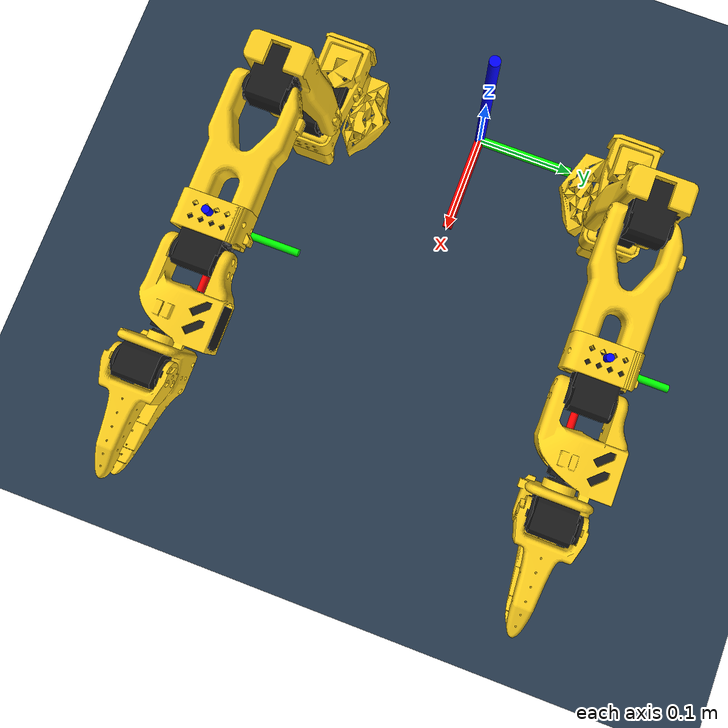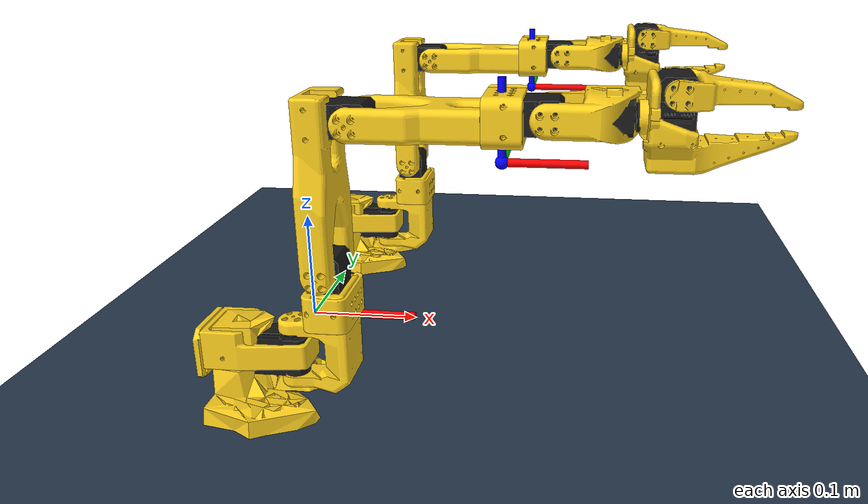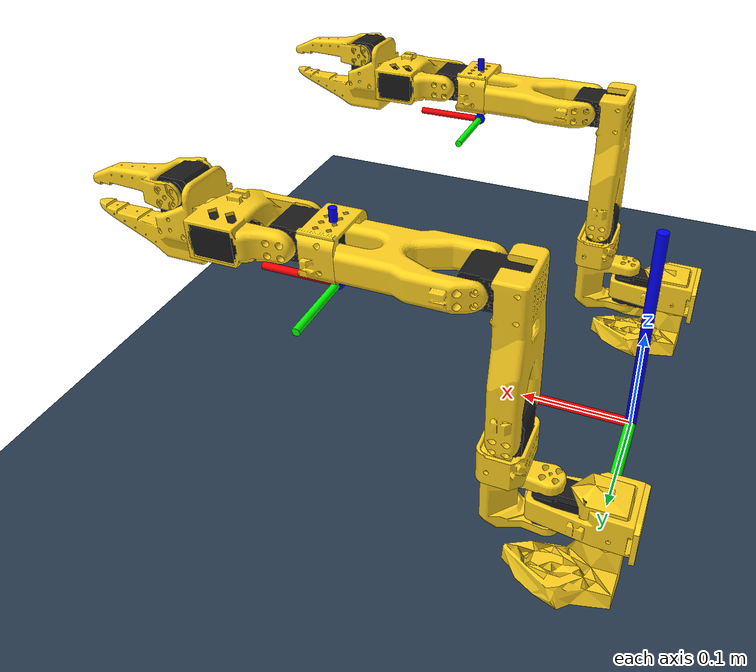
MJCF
<mujoco model="dual so101 teleop scene">
  <include file="dual_so101.xml"/>

  <statistic center="0.15 0 0.15" extent="0.6" meansize="0.05"/>

  <visual>
    <headlight diffuse="0.6 0.6 0.6" ambient="0.3 0.3 0.3" specular="0 0 0"/>
    <global azimuth="160" elevation="-20"/>
  </visual>

  <asset>
    <texture name="grid" type="2d" builtin="checker" rgb1=".2 .3 .4" rgb2=".1 0.15 0.2" width="512" height="512"
      mark="cross" markrgb=".8 .8 .8"/>
    <material name="grid" texture="grid" texrepeat="1 1" texuniform="true"/>
  </asset>

  <worldbody>
    <light pos="0 0 1.5" directional="true"/>
    <geom name="floor" size="0.5 0.5 0.01" type="plane" material="grid"/>

    <!-- Mocap target for XR left controller visualization -->
    <body name="left_target" pos="0.2 0.15 0.2" quat="1 0 0 0" mocap="true">
      <geom name="left_target_x_shaft" type="cylinder" size="0.003 0.03" pos="0.03 0 0" zaxis="1 0 0" rgba="1 0 0 1" contype="0" conaffinity="0" group="1"/>
      <geom name="left_target_y_shaft" type="cylinder" size="0.003 0.03" pos="0 0.03 0" zaxis="0 1 0" rgba="0 1 0 1" contype="0" conaffinity="0" group="1"/>
      <geom name="left_target_z_shaft" type="cylinder" size="0.003 0.03" pos="0 0 0.03" zaxis="0 0 1" rgba="0 0 1 1" contype="0" conaffinity="0" group="1"/>
      <site type="sphere" size="0.005" rgba="0 0 1 1" group="1"/>
    </body>

    <!-- Mocap target for XR right controller visualization -->
    <body name="right_target" pos="0.2 -0.15 0.2" quat="1 0 0 0" mocap="true">
      <geom name="right_target_x_shaft" type="cylinder" size="0.003 0.03" pos="0.03 0 0" zaxis="1 0 0" rgba="1 0 0 1" contype="0" conaffinity="0" group="1"/>
      <geom name="right_target_y_shaft" type="cylinder" size="0.003 0.03" pos="0 0.03 0" zaxis="0 1 0" rgba="0 1 0 1" contype="0" conaffinity="0" group="1"/>
      <geom name="right_target_z_shaft" type="cylinder" size="0.003 0.03" pos="0 0 0.03" zaxis="0 0 1" rgba="0 0 1 1" contype="0" conaffinity="0" group="1"/>
      <site type="sphere" size="0.005" rgba="0 0 1 1" group="1"/>
    </body>

    <!-- World frame axes -->
    <geom name="world_x_shaft" type="cylinder" size="0.005 0.05" pos="0.05 0 0.0" zaxis="1 0 0" rgba="1 0 0 1" contype="0" conaffinity="0" group="1"/>
    <geom name="world_y_shaft" type="cylinder" size="0.005 0.05" pos="0 0.05 0.0" zaxis="0 1 0" rgba="0 1 0 1" contype="0" conaffinity="0" group="1"/>
    <geom name="world_z_shaft" type="cylinder" size="0.005 0.1" pos="0 0 0.1" zaxis="0 0 1" rgba="0 0 1 1" contype="0" conaffinity="0" group="1"/>
  </worldbody>
</mujoco>

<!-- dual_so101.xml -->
<mujoco model="dual_so101">
  <compiler angle="radian" meshdir="assets" autolimits="true"/>

  <!-- Shared defaults (from single-arm model) -->
  <default>
    <default class="so101_new_calib">
      <joint damping="1" frictionloss="0.1" armature="0.005"/>
      <position kp="50"/>
      <default class="visual">
        <geom type="mesh" contype="0" conaffinity="0" group="2"/>
      </default>
      <default class="collision">
        <geom group="3"/>
      </default>
    </default>
  </default>

  <default>
    <default class="sts3215">
      <geom contype="0" conaffinity="0"/>
      <joint damping="0.60" frictionloss="0.052" armature="0.028"/>
      <position kp="998.22" kv="2.731" forcerange="-2.94 2.94"/>
    </default>
    <default class="backlash">
      <joint damping="0.01" frictionloss="0" armature="0.01" limited="true" range="-0.008726646259971648 0.008726646259971648"/>
    </default>
  </default>

  <worldbody>
    <!-- ==================== LEFT ARM ==================== -->

    <!-- Link base -->
    <body name="left_base" pos="0 0.15 0" quat="1 0 0 0" childclass="so101_new_calib">
      <inertial pos="0.0137179 -5.19711e-05 0.0334843" mass="0.147" fullinertia="0.000114686 0.000136117 0.000130364 -4.59787e-07 4.97151e-06 9.75275e-08"/>
      <!-- Part base_motor_holder_so101_v1 -->
      <geom type="mesh" class="visual" pos="-0.00636471 -9.94414e-05 -0.0024" quat="0.5 0.5 0.5 0.5" mesh="base_motor_holder_so101_v1" material="base_motor_holder_so101_v1_material"/>
      <!-- Part base_so101_v2 -->
      <geom type="mesh" class="visual" pos="-0.00636471 -8.97657e-09 -0.0024" quat="0.5 0.5 0.5 0.5" mesh="base_so101_v2" material="base_so101_v2_material"/>
      <!-- Part sts3215_03a_v1 -->
      <geom type="mesh" class="visual" pos="0.0263353 -8.97657e-09 0.0437" quat="1 -2.85511e-16 -9.64433e-17 6.12908e-16" mesh="sts3215_03a_v1" material="sts3215_03a_v1_material"/>
      <!-- Part waveshare_mounting_plate_so101_v2 -->
      <geom type="mesh" class="visual" pos="-0.0309827 -0.000199441 0.0474" quat="0.5 0.5 0.5 0.5" mesh="waveshare_mounting_plate_so101_v2" material="waveshare_mounting_plate_so101_v2_material"/>
      <!-- Frame baseframe -->
      <site group="3" name="left_baseframe" pos="8.67362e-19 9.55596e-18 3.46945e-18" quat="1 -8.17396e-19 3.78392e-17 2.22045e-16"/>
      <!-- Link shoulder -->
      <body name="left_shoulder" pos="0.0388353 -8.97657e-09 0.0624" quat="3.56167e-16 1.22818e-15 -1 -4.14635e-16">
        <!-- Joint from base to shoulder -->
        <joint axis="0 0 1" name="left_shoulder_pan" type="hinge" range="-1.9198621771937616 1.9198621771937634" class="sts3215"/>
        <inertial pos="-0.0307604 -1.66727e-05 -0.0252713" mass="0.100006" fullinertia="8.3759e-05 8.10403e-05 2.39783e-05 7.55525e-08 -1.16342e-06 1.54663e-07"/>
        <!-- Part sts3215_03a_v1_2 -->
        <geom type="mesh" class="visual" pos="-0.0303992 0.000422241 -0.0417" quat="0.5 0.5 0.5 -0.5" mesh="sts3215_03a_v1" material="sts3215_03a_v1_material"/>
        <geom type="mesh" class="collision" pos="-0.0303992 0.000422241 -0.0417" quat="0.5 0.5 0.5 -0.5" mesh="sts3215_03a_v1" material="sts3215_03a_v1_material"/>
        <!-- Part motor_holder_so101_base_v1 -->
        <geom type="mesh" class="visual" pos="-0.0675992 -0.000177759 0.0158499" quat="0.5 0.5 -0.5 0.5" mesh="motor_holder_so101_base_v1" material="motor_holder_so101_base_v1_material"/>
        <geom type="mesh" class="collision" pos="-0.0675992 -0.000177759 0.0158499" quat="0.5 0.5 -0.5 0.5" mesh="motor_holder_so101_base_v1" material="motor_holder_so101_base_v1_material"/>
        <!-- Part rotation_pitch_so101_v1 -->
        <geom type="mesh" class="visual" pos="0.0122008 2.22413e-05 0.0464" quat="0.707107 -0.707107 -0 8.3163e-34" mesh="rotation_pitch_so101_v1" material="rotation_pitch_so101_v1_material"/>
        <geom type="mesh" class="collision" pos="0.0122008 2.22413e-05 0.0464" quat="0.707107 -0.707107 -0 8.3163e-34" mesh="rotation_pitch_so101_v1" material="rotation_pitch_so101_v1_material"/>
        <!-- Link upper_arm -->
        <body name="left_upper_arm" pos="-0.0303992 -0.0182778 -0.0542" quat="0.5 -0.5 -0.5 -0.5">
          <!-- Joint from shoulder to upper_arm -->
          <joint axis="0 0 1" name="left_shoulder_lift" type="hinge" range="-1.7453292519943224 1.7453292519943366" class="sts3215"/>
          <inertial pos="-0.0898471 -0.00838224 0.0184089" mass="0.103" fullinertia="4.08002e-05 0.000147318 0.000142487 -1.97819e-05 -4.03016e-08 8.97326e-09"/>
          <!-- Part sts3215_03a_v1_3 -->
          <geom type="mesh" class="visual" pos="-0.11257 -0.0155 0.0187" quat="4.56308e-16 -0.707107 0.707107 -1.37383e-16" mesh="sts3215_03a_v1" material="sts3215_03a_v1_material"/>
          <geom type="mesh" class="collision" pos="-0.11257 -0.0155 0.0187" quat="4.56308e-16 -0.707107 0.707107 -1.37383e-16" mesh="sts3215_03a_v1" material="sts3215_03a_v1_material"/>
          <!-- Part upper_arm_so101_v1 -->
          <geom type="mesh" class="visual" pos="-0.065085 0.012 0.0182" quat="0 1 0 0" mesh="upper_arm_so101_v1" material="upper_arm_so101_v1_material"/>
          <geom type="mesh" class="collision" pos="-0.065085 0.012 0.0182" quat="0 1 0 0" mesh="upper_arm_so101_v1" material="upper_arm_so101_v1_material"/>
          <!-- Link lower_arm -->
          <body name="left_lower_arm" pos="-0.11257 -0.028 1.73763e-16" quat="0.707107 -5.98613e-17 -2.58051e-17 0.707107">
            <!-- Joint from upper_arm to lower_arm -->
            <!-- Note: 5-degree calibration offset applied to joint range -->
            <joint axis="0 0 1" name="left_elbow_flex" type="hinge" range="-1.69 1.69" class="sts3215"/>
            <inertial pos="-0.0980701 0.00324376 0.0182831" mass="0.104" fullinertia="2.87438e-05 0.000159844 0.00014529 7.41152e-06 1.26409e-06 -4.90188e-08"/>
            <!-- Part under_arm_so101_v1 -->
            <geom type="mesh" class="visual" pos="-0.0648499 -0.032 0.0182" quat="0 1 0 0" mesh="under_arm_so101_v1" material="under_arm_so101_v1_material"/>
            <geom type="mesh" class="collision" pos="-0.0648499 -0.032 0.0182" quat="0 1 0 0" mesh="under_arm_so101_v1" material="under_arm_so101_v1_material"/>
            <!-- Part motor_holder_so101_wrist_v1 -->
            <geom type="mesh" class="visual" pos="-0.0648499 -0.032 0.018" quat="3.92687e-16 -1 -1.9186e-15 -6.38378e-16" mesh="motor_holder_so101_wrist_v1" material="motor_holder_so101_wrist_v1_material"/>
            <geom type="mesh" class="collision" pos="-0.0648499 -0.032 0.018" quat="3.92687e-16 -1 -1.9186e-15 -6.38378e-16" mesh="motor_holder_so101_wrist_v1" material="motor_holder_so101_wrist_v1_material"/>
            <!-- Part sts3215_03a_v1_4 -->
            <geom type="mesh" class="visual" pos="-0.1224 0.0052 0.0187" quat="7.21645e-16 1.56949e-15 1 -3.33067e-16" mesh="sts3215_03a_v1" material="sts3215_03a_v1_material"/>
            <geom type="mesh" class="collision" pos="-0.1224 0.0052 0.0187" quat="7.21645e-16 1.56949e-15 1 -3.33067e-16" mesh="sts3215_03a_v1" material="sts3215_03a_v1_material"/>
            <!-- Link wrist -->
            <body name="left_wrist" pos="-0.1349 0.0052 3.62355e-17" quat="0.707107 9.58722e-16 -7.51313e-16 -0.707107">
              <!-- Joint from lower_arm to wrist -->
              <joint axis="0 0 1" name="left_wrist_flex" type="hinge" range="-1.6580628494556928 1.6580627293335335" class="sts3215"/>
              <inertial pos="-0.000103312 -0.0386143 0.0281156" mass="0.079" fullinertia="3.68263e-05 2.5391e-05 2.1e-05 1.7893e-08 -5.28128e-08 3.6412e-06"/>
              <!-- Part sts3215_03a_no_horn_v1 -->
              <geom type="mesh" class="visual" pos="8.32667e-17 -0.0424 0.0306" quat="0.5 0.5 0.5 -0.5" mesh="sts3215_03a_no_horn_v1" material="sts3215_03a_no_horn_v1_material"/>
              <geom type="mesh" class="collision" pos="8.32667e-17 -0.0424 0.0306" quat="0.5 0.5 0.5 -0.5" mesh="sts3215_03a_no_horn_v1" material="sts3215_03a_no_horn_v1_material"/>
              <!-- Part wrist_roll_pitch_so101_v2 -->
              <geom type="mesh" class="visual" pos="0 -0.028 0.0181" quat="0.5 -0.5 -0.5 -0.5" mesh="wrist_roll_pitch_so101_v2" material="wrist_roll_pitch_so101_v2_material"/>
              <geom type="mesh" class="collision" pos="0 -0.028 0.0181" quat="0.5 -0.5 -0.5 -0.5" mesh="wrist_roll_pitch_so101_v2" material="wrist_roll_pitch_so101_v2_material"/>
              <!-- Link gripper -->
              <body name="left_gripper" pos="5.55112e-17 -0.0611 0.0181" quat="0.0172091 -0.0172091 0.706897 0.706897">
                <!-- Joint from wrist to gripper -->
                <joint axis="0 0 1" name="left_wrist_roll" type="hinge" range="-2.7438472969992493 2.841206309382605" class="sts3215"/>
                <inertial pos="0.000213627 0.000245138 -0.025187" mass="0.087" fullinertia="2.75087e-05 4.33657e-05 3.45059e-05 -3.35241e-07 -5.7352e-06 -5.17847e-08"/>
                <!-- Part sts3215_03a_v1_5 -->
                <geom type="mesh" class="visual" pos="0.0077 0.0001 -0.0234" quat="0.707107 -0.707107 1.66015e-15 6.45094e-15" mesh="sts3215_03a_v1" material="sts3215_03a_v1_material"/>
                <geom type="mesh" class="collision" pos="0.0077 0.0001 -0.0234" quat="0.707107 -0.707107 1.66015e-15 6.45094e-15" mesh="sts3215_03a_v1" material="sts3215_03a_v1_material"/>
                <!-- Part wrist_roll_follower_so101_v1 -->
                <geom type="mesh" class="visual" pos="8.32667e-17 -0.000218214 0.000949706" quat="0 1 0 0" mesh="wrist_roll_follower_so101_v1" material="wrist_roll_follower_so101_v1_material"/>
                <geom type="mesh" class="collision" pos="8.32667e-17 -0.000218214 0.000949706" quat="0 1 0 0" mesh="wrist_roll_follower_so101_v1" material="wrist_roll_follower_so101_v1_material"/>
                <!-- Frame gripperframe -->
                <site group="3" name="left_gripperframe" pos="-0.0079 -0.000218121 -0.0981274" quat="0.707107 -0 0.707107 -2.37788e-17"/>
                <!-- Link moving_jaw_so101_v1 -->
                <body name="left_moving_jaw_so101_v1" pos="0.0202 0.0188 -0.0234" quat="0.707107 0.707107 -1.85362e-08 1.85362e-08">
                  <!-- Joint from gripper to moving_jaw_so101_v1 -->
                  <joint axis="0 0 1" name="left_gripper" type="hinge" range="-0.17453297762778586 1.7453291995659765" class="sts3215"/>
                  <inertial pos="-0.00157495 -0.0300244 0.0192755" mass="0.012" fullinertia="6.61427e-06 1.89032e-06 5.28738e-06 -3.19807e-07 -5.90717e-09 -1.09945e-07"/>
                  <!-- Part moving_jaw_so101_v1 -->
                  <geom type="mesh" class="visual" pos="-5.55112e-17 -5.55112e-17 0.0189" quat="1 -0 3.00524e-16 -2.00834e-17" mesh="moving_jaw_so101_v1" material="moving_jaw_so101_v1_material"/>
                  <geom type="mesh" class="collision" pos="-5.55112e-17 -5.55112e-17 0.0189" quat="1 -0 3.00524e-16 -2.00834e-17" mesh="moving_jaw_so101_v1" material="moving_jaw_so101_v1_material"/>
                </body>
              </body>
            </body>
          </body>
        </body>
      </body>
    </body>

    <!-- ==================== RIGHT ARM ==================== -->

    <!-- Link base -->
    <body name="right_base" pos="0 -0.15 0" quat="1 0 0 0" childclass="so101_new_calib">
      <inertial pos="0.0137179 -5.19711e-05 0.0334843" mass="0.147" fullinertia="0.000114686 0.000136117 0.000130364 -4.59787e-07 4.97151e-06 9.75275e-08"/>
      <!-- Part base_motor_holder_so101_v1 -->
      <geom type="mesh" class="visual" pos="-0.00636471 -9.94414e-05 -0.0024" quat="0.5 0.5 0.5 0.5" mesh="base_motor_holder_so101_v1" material="base_motor_holder_so101_v1_material"/>
      <!-- Part base_so101_v2 -->
      <geom type="mesh" class="visual" pos="-0.00636471 -8.97657e-09 -0.0024" quat="0.5 0.5 0.5 0.5" mesh="base_so101_v2" material="base_so101_v2_material"/>
      <!-- Part sts3215_03a_v1 -->
      <geom type="mesh" class="visual" pos="0.0263353 -8.97657e-09 0.0437" quat="1 -2.85511e-16 -9.64433e-17 6.12908e-16" mesh="sts3215_03a_v1" material="sts3215_03a_v1_material"/>
      <!-- Part waveshare_mounting_plate_so101_v2 -->
      <geom type="mesh" class="visual" pos="-0.0309827 -0.000199441 0.0474" quat="0.5 0.5 0.5 0.5" mesh="waveshare_mounting_plate_so101_v2" material="waveshare_mounting_plate_so101_v2_material"/>
      <!-- Frame baseframe -->
      <site group="3" name="right_baseframe" pos="8.67362e-19 9.55596e-18 3.46945e-18" quat="1 -8.17396e-19 3.78392e-17 2.22045e-16"/>
      <!-- Link shoulder -->
      <body name="right_shoulder" pos="0.0388353 -8.97657e-09 0.0624" quat="3.56167e-16 1.22818e-15 -1 -4.14635e-16">
        <!-- Joint from base to shoulder -->
        <joint axis="0 0 1" name="right_shoulder_pan" type="hinge" range="-1.9198621771937616 1.9198621771937634" class="sts3215"/>
        <inertial pos="-0.0307604 -1.66727e-05 -0.0252713" mass="0.100006" fullinertia="8.3759e-05 8.10403e-05 2.39783e-05 7.55525e-08 -1.16342e-06 1.54663e-07"/>
        <!-- Part sts3215_03a_v1_2 -->
        <geom type="mesh" class="visual" pos="-0.0303992 0.000422241 -0.0417" quat="0.5 0.5 0.5 -0.5" mesh="sts3215_03a_v1" material="sts3215_03a_v1_material"/>
        <geom type="mesh" class="collision" pos="-0.0303992 0.000422241 -0.0417" quat="0.5 0.5 0.5 -0.5" mesh="sts3215_03a_v1" material="sts3215_03a_v1_material"/>
        <!-- Part motor_holder_so101_base_v1 -->
        <geom type="mesh" class="visual" pos="-0.0675992 -0.000177759 0.0158499" quat="0.5 0.5 -0.5 0.5" mesh="motor_holder_so101_base_v1" material="motor_holder_so101_base_v1_material"/>
        <geom type="mesh" class="collision" pos="-0.0675992 -0.000177759 0.0158499" quat="0.5 0.5 -0.5 0.5" mesh="motor_holder_so101_base_v1" material="motor_holder_so101_base_v1_material"/>
        <!-- Part rotation_pitch_so101_v1 -->
        <geom type="mesh" class="visual" pos="0.0122008 2.22413e-05 0.0464" quat="0.707107 -0.707107 -0 8.3163e-34" mesh="rotation_pitch_so101_v1" material="rotation_pitch_so101_v1_material"/>
        <geom type="mesh" class="collision" pos="0.0122008 2.22413e-05 0.0464" quat="0.707107 -0.707107 -0 8.3163e-34" mesh="rotation_pitch_so101_v1" material="rotation_pitch_so101_v1_material"/>
        <!-- Link upper_arm -->
        <body name="right_upper_arm" pos="-0.0303992 -0.0182778 -0.0542" quat="0.5 -0.5 -0.5 -0.5">
          <!-- Joint from shoulder to upper_arm -->
          <joint axis="0 0 1" name="right_shoulder_lift" type="hinge" range="-1.7453292519943224 1.7453292519943366" class="sts3215"/>
          <inertial pos="-0.0898471 -0.00838224 0.0184089" mass="0.103" fullinertia="4.08002e-05 0.000147318 0.000142487 -1.97819e-05 -4.03016e-08 8.97326e-09"/>
          <!-- Part sts3215_03a_v1_3 -->
          <geom type="mesh" class="visual" pos="-0.11257 -0.0155 0.0187" quat="4.56308e-16 -0.707107 0.707107 -1.37383e-16" mesh="sts3215_03a_v1" material="sts3215_03a_v1_material"/>
          <geom type="mesh" class="collision" pos="-0.11257 -0.0155 0.0187" quat="4.56308e-16 -0.707107 0.707107 -1.37383e-16" mesh="sts3215_03a_v1" material="sts3215_03a_v1_material"/>
          <!-- Part upper_arm_so101_v1 -->
          <geom type="mesh" class="visual" pos="-0.065085 0.012 0.0182" quat="0 1 0 0" mesh="upper_arm_so101_v1" material="upper_arm_so101_v1_material"/>
          <geom type="mesh" class="collision" pos="-0.065085 0.012 0.0182" quat="0 1 0 0" mesh="upper_arm_so101_v1" material="upper_arm_so101_v1_material"/>
          <!-- Link lower_arm -->
          <body name="right_lower_arm" pos="-0.11257 -0.028 1.73763e-16" quat="0.707107 -5.98613e-17 -2.58051e-17 0.707107">
            <!-- Joint from upper_arm to lower_arm -->
            <!-- Note: 5-degree calibration offset applied to joint range -->
            <joint axis="0 0 1" name="right_elbow_flex" type="hinge" range="-1.69 1.69" class="sts3215"/>
            <inertial pos="-0.0980701 0.00324376 0.0182831" mass="0.104" fullinertia="2.87438e-05 0.000159844 0.00014529 7.41152e-06 1.26409e-06 -4.90188e-08"/>
            <!-- Part under_arm_so101_v1 -->
            <geom type="mesh" class="visual" pos="-0.0648499 -0.032 0.0182" quat="0 1 0 0" mesh="under_arm_so101_v1" material="under_arm_so101_v1_material"/>
            <geom type="mesh" class="collision" pos="-0.0648499 -0.032 0.0182" quat="0 1 0 0" mesh="under_arm_so101_v1" material="under_arm_so101_v1_material"/>
            <!-- Part motor_holder_so101_wrist_v1 -->
            <geom type="mesh" class="visual" pos="-0.0648499 -0.032 0.018" quat="3.92687e-16 -1 -1.9186e-15 -6.38378e-16" mesh="motor_holder_so101_wrist_v1" material="motor_holder_so101_wrist_v1_material"/>
            <geom type="mesh" class="collision" pos="-0.0648499 -0.032 0.018" quat="3.92687e-16 -1 -1.9186e-15 -6.38378e-16" mesh="motor_holder_so101_wrist_v1" material="motor_holder_so101_wrist_v1_material"/>
            <!-- Part sts3215_03a_v1_4 -->
            <geom type="mesh" class="visual" pos="-0.1224 0.0052 0.0187" quat="7.21645e-16 1.56949e-15 1 -3.33067e-16" mesh="sts3215_03a_v1" material="sts3215_03a_v1_material"/>
            <geom type="mesh" class="collision" pos="-0.1224 0.0052 0.0187" quat="7.21645e-16 1.56949e-15 1 -3.33067e-16" mesh="sts3215_03a_v1" material="sts3215_03a_v1_material"/>
            <!-- Link wrist -->
            <body name="right_wrist" pos="-0.1349 0.0052 3.62355e-17" quat="0.707107 9.58722e-16 -7.51313e-16 -0.707107">
              <!-- Joint from lower_arm to wrist -->
              <joint axis="0 0 1" name="right_wrist_flex" type="hinge" range="-1.6580628494556928 1.6580627293335335" class="sts3215"/>
              <inertial pos="-0.000103312 -0.0386143 0.0281156" mass="0.079" fullinertia="3.68263e-05 2.5391e-05 2.1e-05 1.7893e-08 -5.28128e-08 3.6412e-06"/>
              <!-- Part sts3215_03a_no_horn_v1 -->
              <geom type="mesh" class="visual" pos="8.32667e-17 -0.0424 0.0306" quat="0.5 0.5 0.5 -0.5" mesh="sts3215_03a_no_horn_v1" material="sts3215_03a_no_horn_v1_material"/>
              <geom type="mesh" class="collision" pos="8.32667e-17 -0.0424 0.0306" quat="0.5 0.5 0.5 -0.5" mesh="sts3215_03a_no_horn_v1" material="sts3215_03a_no_horn_v1_material"/>
              <!-- Part wrist_roll_pitch_so101_v2 -->
              <geom type="mesh" class="visual" pos="0 -0.028 0.0181" quat="0.5 -0.5 -0.5 -0.5" mesh="wrist_roll_pitch_so101_v2" material="wrist_roll_pitch_so101_v2_material"/>
              <geom type="mesh" class="collision" pos="0 -0.028 0.0181" quat="0.5 -0.5 -0.5 -0.5" mesh="wrist_roll_pitch_so101_v2" material="wrist_roll_pitch_so101_v2_material"/>
              <!-- Link gripper -->
              <body name="right_gripper" pos="5.55112e-17 -0.0611 0.0181" quat="0.0172091 -0.0172091 0.706897 0.706897">
                <!-- Joint from wrist to gripper -->
                <joint axis="0 0 1" name="right_wrist_roll" type="hinge" range="-2.7438472969992493 2.841206309382605" class="sts3215"/>
                <inertial pos="0.000213627 0.000245138 -0.025187" mass="0.087" fullinertia="2.75087e-05 4.33657e-05 3.45059e-05 -3.35241e-07 -5.7352e-06 -5.17847e-08"/>
                <!-- Part sts3215_03a_v1_5 -->
                <geom type="mesh" class="visual" pos="0.0077 0.0001 -0.0234" quat="0.707107 -0.707107 1.66015e-15 6.45094e-15" mesh="sts3215_03a_v1" material="sts3215_03a_v1_material"/>
                <geom type="mesh" class="collision" pos="0.0077 0.0001 -0.0234" quat="0.707107 -0.707107 1.66015e-15 6.45094e-15" mesh="sts3215_03a_v1" material="sts3215_03a_v1_material"/>
                <!-- Part wrist_roll_follower_so101_v1 -->
                <geom type="mesh" class="visual" pos="8.32667e-17 -0.000218214 0.000949706" quat="0 1 0 0" mesh="wrist_roll_follower_so101_v1" material="wrist_roll_follower_so101_v1_material"/>
                <geom type="mesh" class="collision" pos="8.32667e-17 -0.000218214 0.000949706" quat="0 1 0 0" mesh="wrist_roll_follower_so101_v1" material="wrist_roll_follower_so101_v1_material"/>
                <!-- Frame gripperframe -->
                <site group="3" name="right_gripperframe" pos="-0.0079 -0.000218121 -0.0981274" quat="0.707107 -0 0.707107 -2.37788e-17"/>
                <!-- Link moving_jaw_so101_v1 -->
                <body name="right_moving_jaw_so101_v1" pos="0.0202 0.0188 -0.0234" quat="0.707107 0.707107 -1.85362e-08 1.85362e-08">
                  <!-- Joint from gripper to moving_jaw_so101_v1 -->
                  <joint axis="0 0 1" name="right_gripper" type="hinge" range="-0.17453297762778586 1.7453291995659765" class="sts3215"/>
                  <inertial pos="-0.00157495 -0.0300244 0.0192755" mass="0.012" fullinertia="6.61427e-06 1.89032e-06 5.28738e-06 -3.19807e-07 -5.90717e-09 -1.09945e-07"/>
                  <!-- Part moving_jaw_so101_v1 -->
                  <geom type="mesh" class="visual" pos="-5.55112e-17 -5.55112e-17 0.0189" quat="1 -0 3.00524e-16 -2.00834e-17" mesh="moving_jaw_so101_v1" material="moving_jaw_so101_v1_material"/>
                  <geom type="mesh" class="collision" pos="-5.55112e-17 -5.55112e-17 0.0189" quat="1 -0 3.00524e-16 -2.00834e-17" mesh="moving_jaw_so101_v1" material="moving_jaw_so101_v1_material"/>
                </body>
              </body>
            </body>
          </body>
        </body>
      </body>
    </body>

  </worldbody>

  <asset>

    <mesh file="waveshare_mounting_plate_so101_v2.stl"/>
    <mesh file="sts3215_03a_v1.stl"/>
    <mesh file="motor_holder_so101_base_v1.stl"/>
    <mesh file="wrist_roll_follower_so101_v1.stl"/>
    <mesh file="moving_jaw_so101_v1.stl"/>
    <mesh file="base_motor_holder_so101_v1.stl"/>
    <mesh file="upper_arm_so101_v1.stl"/>
    <mesh file="wrist_roll_pitch_so101_v2.stl"/>
    <mesh file="under_arm_so101_v1.stl"/>
    <mesh file="rotation_pitch_so101_v1.stl"/>
    <mesh file="motor_holder_so101_wrist_v1.stl"/>
    <mesh file="sts3215_03a_no_horn_v1.stl"/>
    <mesh file="base_so101_v2.stl"/>
    <material name="base_motor_holder_so101_v1_material" rgba="1 0.82 0.12 1"/>
    <material name="base_so101_v2_material" rgba="1 0.82 0.12 1"/>
    <material name="sts3215_03a_v1_material" rgba="0.1 0.1 0.1 1"/>
    <material name="waveshare_mounting_plate_so101_v2_material" rgba="1 0.82 0.12 1"/>
    <material name="motor_holder_so101_base_v1_material" rgba="1 0.82 0.12 1"/>
    <material name="rotation_pitch_so101_v1_material" rgba="1 0.82 0.12 1"/>
    <material name="upper_arm_so101_v1_material" rgba="1 0.82 0.12 1"/>
    <material name="under_arm_so101_v1_material" rgba="1 0.82 0.12 1"/>
    <material name="motor_holder_so101_wrist_v1_material" rgba="1 0.82 0.12 1"/>
    <material name="sts3215_03a_no_horn_v1_material" rgba="0.1 0.1 0.1 1.0"/>
    <material name="wrist_roll_pitch_so101_v2_material" rgba="1 0.82 0.12 1"/>
    <material name="wrist_roll_follower_so101_v1_material" rgba="1 0.82 0.12 1"/>
    <material name="moving_jaw_so101_v1_material" rgba="1 0.82 0.12 1"/>

    <!-- Additional materials for left/right arm color differentiation -->
    <material name="left_arm_material" rgba="0.9 0.75 0.1 1.0"/>
    <material name="right_arm_material" rgba="0.2 0.5 0.9 1.0"/>
  </asset>

  <actuator>
    <!-- Left arm actuators -->

    <position class="sts3215" name="left_shoulder_pan" joint="left_shoulder_pan" forcerange="-3.35 3.35" ctrlrange="-1.91986 1.91986"/>
    <position class="sts3215" name="left_shoulder_lift" joint="left_shoulder_lift" forcerange="-3.35 3.35" ctrlrange="-1.74533 1.74533"/>
    <position class="sts3215" name="left_elbow_flex" joint="left_elbow_flex" forcerange="-3.35 3.35" ctrlrange="-1.69 1.69"/>
    <position class="sts3215" name="left_wrist_flex" joint="left_wrist_flex" forcerange="-3.35 3.35" ctrlrange="-1.65806 1.65806"/>
    <position class="sts3215" name="left_wrist_roll" joint="left_wrist_roll" forcerange="-3.35 3.35" ctrlrange="-2.74385 2.84121"/>
    <position class="sts3215" name="left_gripper" joint="left_gripper" forcerange="-3.35 3.35" ctrlrange="-0.17453 1.74533"/>

    <!-- Right arm actuators -->

    <position class="sts3215" name="right_shoulder_pan" joint="right_shoulder_pan" forcerange="-3.35 3.35" ctrlrange="-1.91986 1.91986"/>
    <position class="sts3215" name="right_shoulder_lift" joint="right_shoulder_lift" forcerange="-3.35 3.35" ctrlrange="-1.74533 1.74533"/>
    <position class="sts3215" name="right_elbow_flex" joint="right_elbow_flex" forcerange="-3.35 3.35" ctrlrange="-1.69 1.69"/>
    <position class="sts3215" name="right_wrist_flex" joint="right_wrist_flex" forcerange="-3.35 3.35" ctrlrange="-1.65806 1.65806"/>
    <position class="sts3215" name="right_wrist_roll" joint="right_wrist_roll" forcerange="-3.35 3.35" ctrlrange="-2.74385 2.84121"/>
    <position class="sts3215" name="right_gripper" joint="right_gripper" forcerange="-3.35 3.35" ctrlrange="-0.17453 1.74533"/>

  </actuator>
</mujoco>
